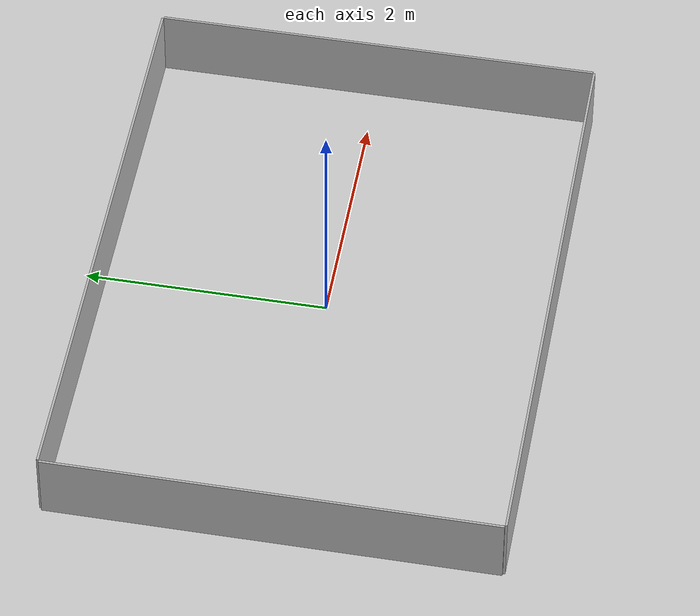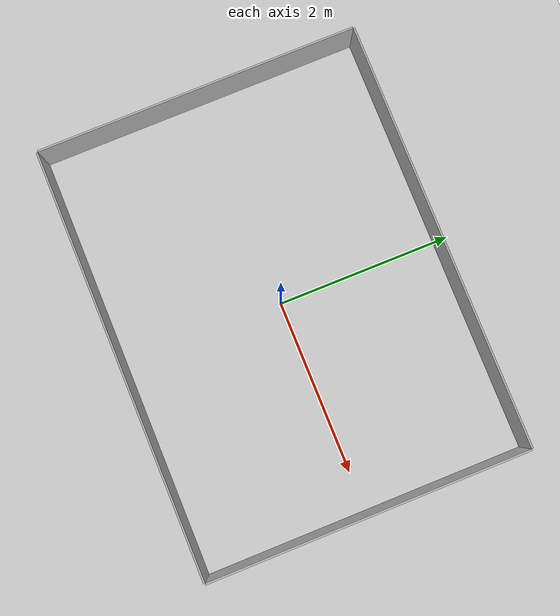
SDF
<sdf version="1.6">
 <world name="default">
  <light name="sun" type="directional">
   <pose>0 0 10 0 -0 0</pose>
   <diffuse>0.8 0.8 0.8 1</diffuse>
   <specular>0.2 0.2 0.2 1</specular>
   <attenuation>
    <range>1000</range>
    <constant>0.9</constant>
    <linear>0.01</linear>
    <quadratic>0.001</quadratic>
   </attenuation>
   <direction>-0.5 0.1 -0.9</direction>
  </light>
  <model name="ground_plane">
   <static>1</static>
   <link name="link">
    <collision name="collision">
     <geometry><plane><normal>0 0 1</normal><size>100 100</size></plane></geometry>
     <surface><friction><ode><mu>100</mu><mu2>50</mu2></ode></friction></surface>
    </collision>
    <visual name="visual">
     <cast_shadows>0</cast_shadows>
     <geometry><plane><normal>0 0 1</normal><size>100 100</size></plane></geometry>
     <material>
      <script><uri>model://media/materials/scripts/gazebo.material</uri><name>Gazebo/Grey</name></script>
     </material>
    </visual>
   </link>
  </model>
  <gravity>0 0 -9.8</gravity>
  <magnetic_field>6e-06 2.3e-05 -4.2e-05</magnetic_field>
  <atmosphere type="adiabatic"/>
  <physics name="default_physics" default="0" type="ode">
   <max_step_size>0.001</max_step_size>
   <real_time_factor>1</real_time_factor>
   <real_time_update_rate>1000</real_time_update_rate>
  </physics>
  <scene><ambient>0.4 0.4 0.4 1</ambient><background>0.7 0.7 0.7 1</background><shadows>1</shadows></scene>
  <spherical_coordinates>
   <surface_model>EARTH_WGS84</surface_model>
   <latitude_deg>0</latitude_deg>
   <longitude_deg>0</longitude_deg>
   <elevation>0</elevation>
   <heading_deg>0</heading_deg>
  </spherical_coordinates>
  <model name="border_Top">
   <pose>0 1.84 0.3 0 -0 0</pose>
   <static>1</static>
   <link name="link">
    <collision name="collision">
     <geometry><box><size>4.88 0.02 0.6</size></box></geometry>
     <surface><friction><ode><mu>0.01</mu><mu2>0.01</mu2></ode></friction></surface>
    </collision>
    <visual name="visual"><geometry><box><size>4.88 0.02 0.6</size></box></geometry></visual>
    <inertial>
     <inertia><ixx>1</ixx><ixy>0</ixy><ixz>0</ixz><iyy>1</iyy><iyz>0</iyz><izz>1</izz></inertia>
     <mass>1</mass>
    </inertial>
   </link>
  </model>
  <model name="border_Bot">
   <static>1</static>
   <pose>0 -1.84 0.3 0 -0 0</pose>
   <link name="link">
    <collision name="collision">
     <geometry><box><size>4.88 0.02 0.6</size></box></geometry>
     <surface><friction><ode><mu>0.01</mu><mu2>0.01</mu2></ode></friction></surface>
    </collision>
    <visual name="visual"><geometry><box><size>4.88 0.02 0.6</size></box></geometry></visual>
    <inertial>
     <inertia><ixx>1</ixx><ixy>0</ixy><ixz>0</ixz><iyy>1</iyy><iyz>0</iyz><izz>1</izz></inertia>
     <mass>1</mass>
    </inertial>
   </link>
  </model>
  <model name="border_Left">
   <static>1</static>
   <pose>-2.45 0 0.3 0 -0 0</pose>
   <link name="link">
    <collision name="collision">
     <geometry><box><size>0.02 3.66 0.6</size></box></geometry>
     <surface><friction><ode><mu>0.01</mu><mu2>0.01</mu2></ode></friction></surface>
    </collision>
    <visual name="visual"><geometry><box><size>0.02 3.66 0.6</size></box></geometry></visual>
    <inertial>
     <inertia><ixx>1</ixx><ixy>0</ixy><ixz>0</ixz><iyy>1</iyy><iyz>0</iyz><izz>1</izz></inertia>
     <mass>1</mass>
    </inertial>
   </link>
  </model>
  <model name="border_Right">
   <static>1</static>
   <pose>2.45 0 0.3 0 -0 0</pose>
   <link name="link">
    <collision name="collision">
     <geometry><box><size>0.02 3.66 0.6</size></box></geometry>
     <surface><friction><ode><mu>0.01</mu><mu2>0.01</mu2></ode></friction></surface>
    </collision>
    <visual name="visual"><geometry><box><size>0.02 3.66 0.6</size></box></geometry></visual>
    <inertial>
     <inertia><ixx>1</ixx><ixy>0</ixy><ixz>0</ixz><iyy>1</iyy><iyz>0</iyz><izz>1</izz></inertia>
     <mass>1</mass>
    </inertial>
   </link>
  </model>
 </world>
</sdf>
